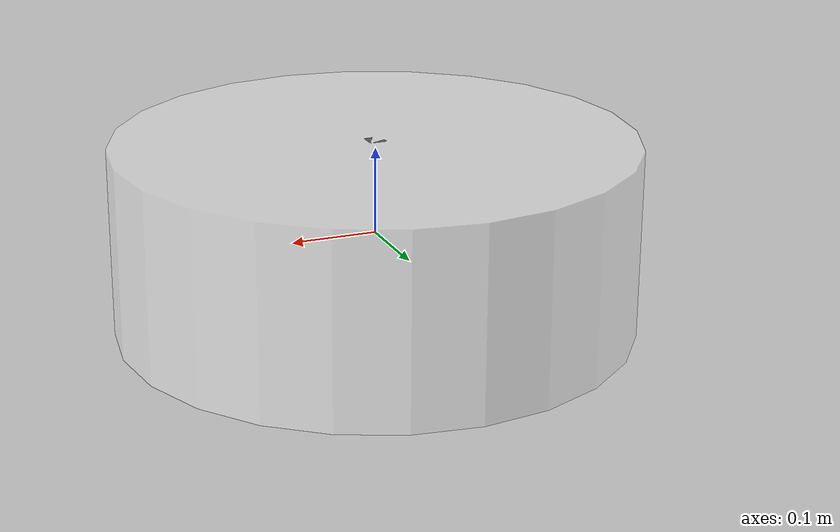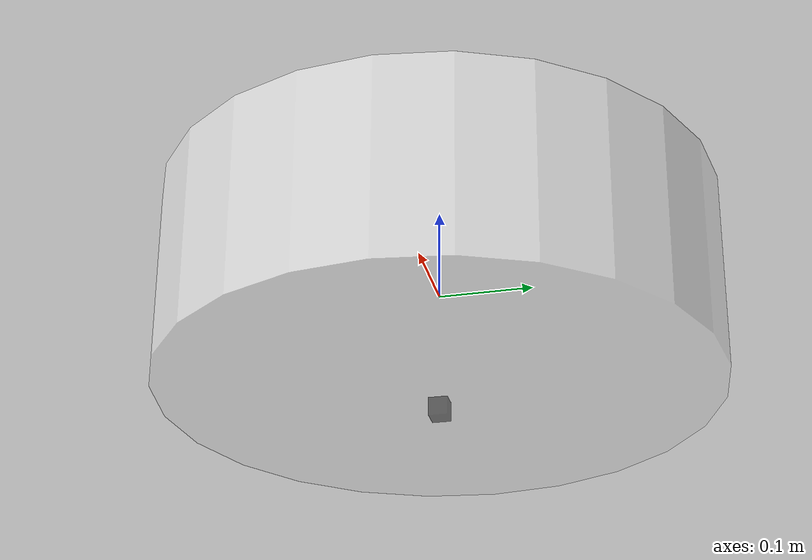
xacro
<?xml version="1.0"?>
<robot xmlns:xacro="http://www.ros.org/wiki/xacro" name="first_robot">
    <xacro:macro name="base_link" params="length radius">
     <link name="base_link">
        <!-- 部件的外观描述 -->
        <visual>
             <!-- 沿着自己几何中心的偏移和旋转量 -->
            <origin xyz="0.0 0.0 0.0" rpy="0.0 0.0 0.0"/>
            <!-- 几何形状 -->
            <geometry>
                    <!-- 圆柱体 radius 半径 xx 高度length xx-->
                    <cylinder radius="${radius}" length="${length}"/>
                </geometry>
                <!-- 材质颜色-->
                <material name="white">
                    <color rgba="1.0 1.0 1.0 0.5"/>
                </material>
        </visual>
    </link>
</xacro:macro>

    <!-- 机器人的IMU部件，惯性测量传感器 -->
<xacro:macro name="imu_link" params="imu_name xyz">
 <link name="${imu_name}_link">
        <!-- 部件的外观描述 -->
        <visual>
             <!-- 沿着自己几何中心的偏移和旋转量 -->
            <origin xyz="0.0 0.0 0.0" rpy="0.0 0.0 0.0"/>
            <!-- 几何形状 -->
            <geometry>
                    <box size="0.02 0.02 0.02"/>
                </geometry>
                <!-- 材质和颜色描述 -->
                <material name="black">
                    <color rgba="0.0 0.0 0.0 0.5"/>
                </material>
        </visual>
    </link>
    <!-- 机器人的关节，用于组合机器人的部件 -->
    <joint name="${imu_name}_joint" type="fixed">
        <parent link="base_link"/>
        <child link="${imu_name}_link"/>
        <origin xyz="${xyz}" rpy="0.0 0.0 0.0"/>

        </joint>
    </xacro:macro>

    <xacro:base_link  length="0.22"  radius="0.3"/>
    <xacro:imu_link  imu_name="imu_up" xyz="0.0 0.0 0.1"/>
    <xacro:imu_link  imu_name="imu_down" xyz="0.0 0.0 -0.13"/>

</robot>
